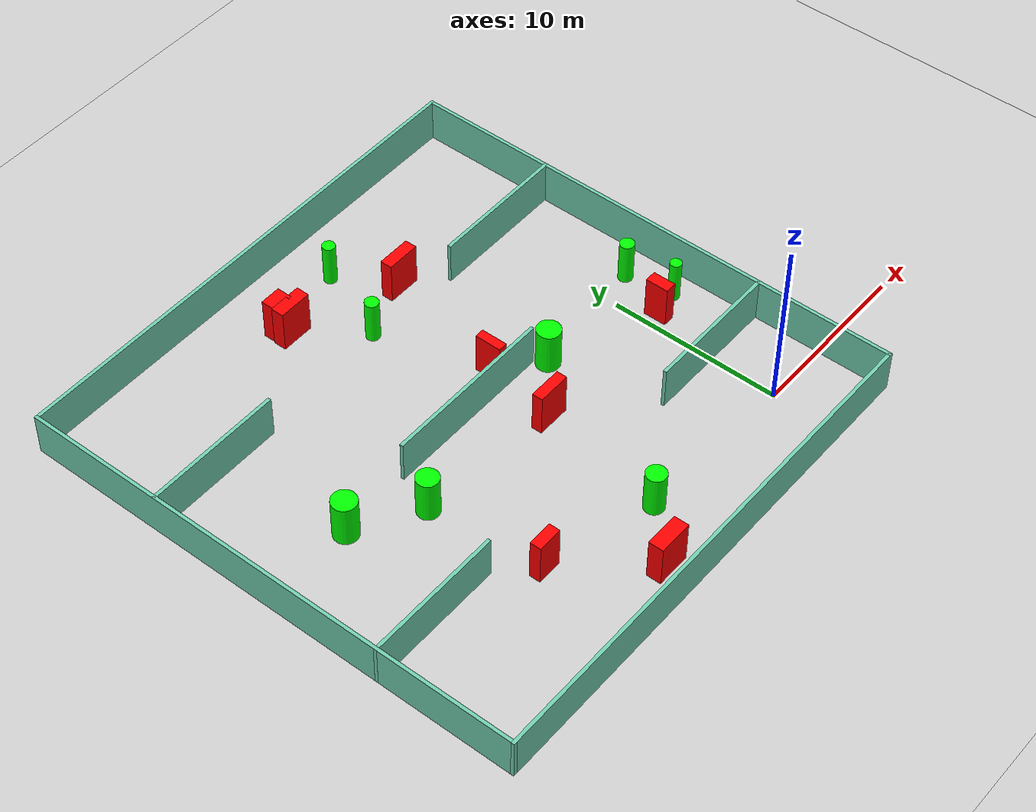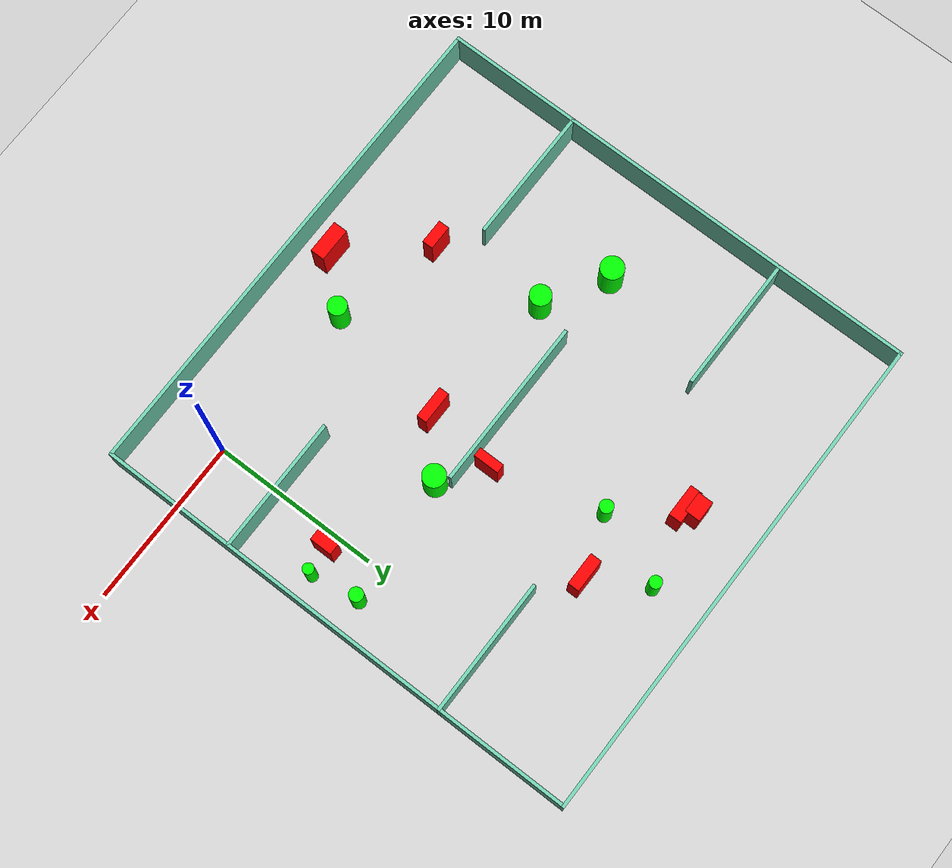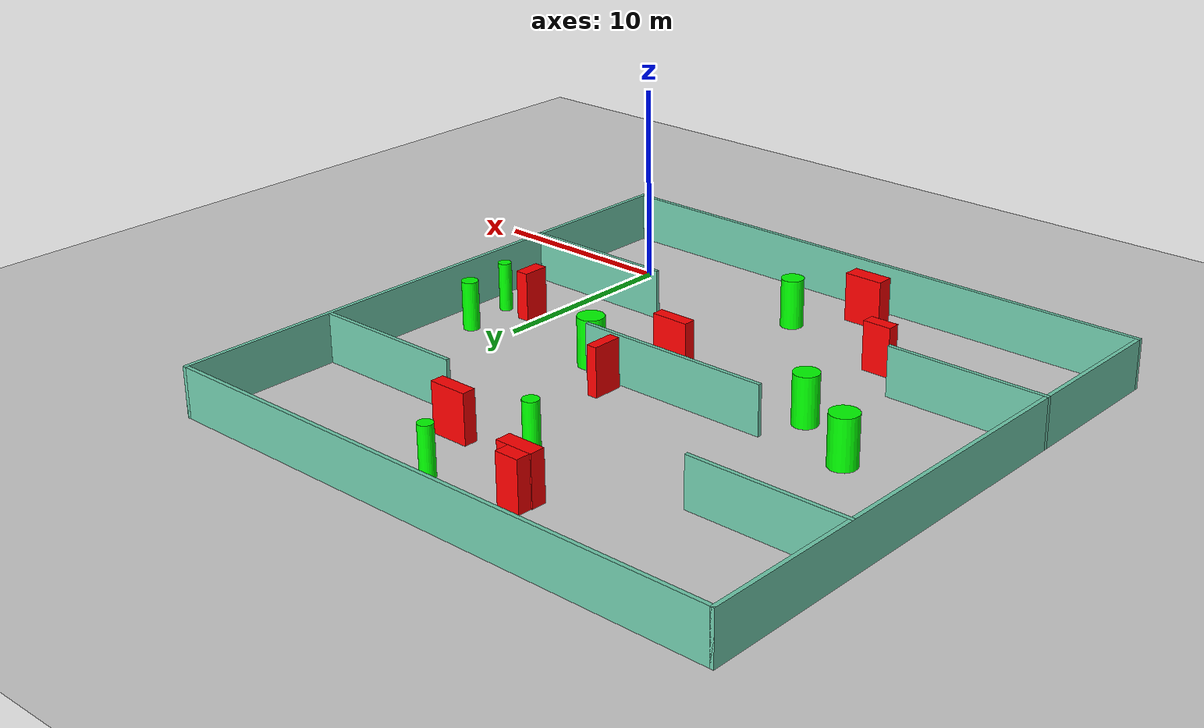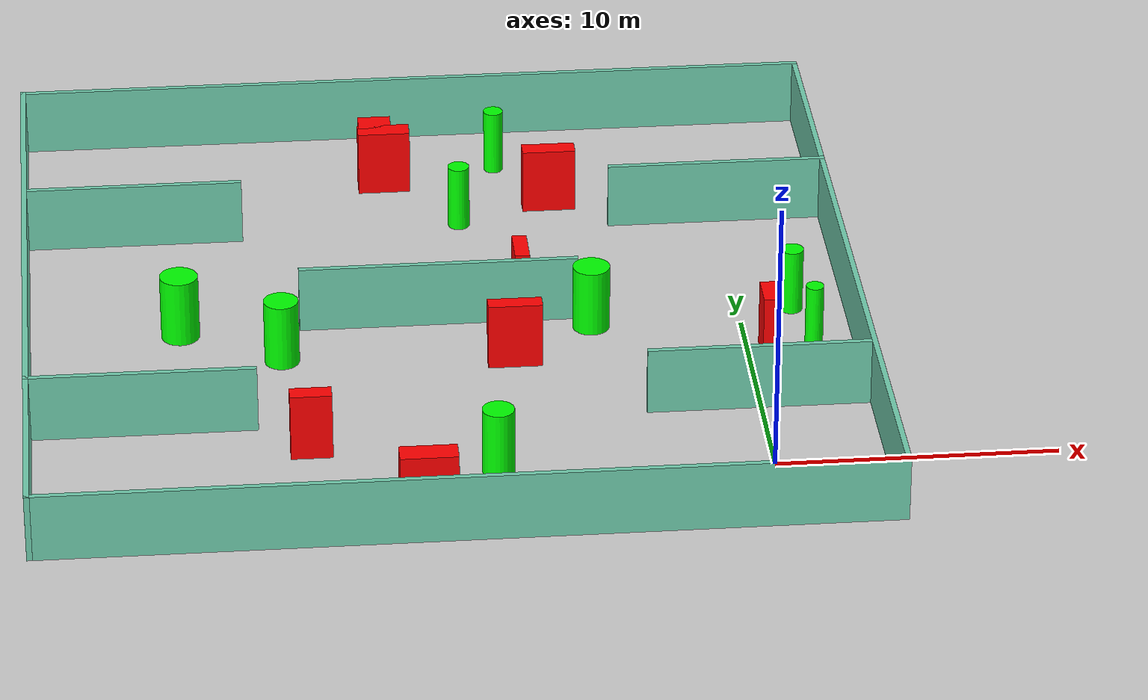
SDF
<sdf version="1.7">
 <world name="default">
  <light name="sun" type="directional">
   <pose>0 0 10 0 -0 0</pose>
   <diffuse>0.8 0.8 0.8 1</diffuse>
   <specular>0.2 0.2 0.2 1</specular>
   <attenuation>
    <range>1000</range>
    <constant>0.9</constant>
    <linear>0.01</linear>
    <quadratic>0.001</quadratic>
   </attenuation>
   <direction>-0.5 0.1 -0.9</direction>
   <spot><inner_angle>0</inner_angle><outer_angle>0</outer_angle><falloff>0</falloff></spot>
  </light>
  <model name="ground_plane">
   <static>1</static>
   <link name="link">
    <collision name="collision">
     <geometry><plane><normal>0 0 1</normal><size>100 100</size></plane></geometry>
     <surface>
      <contact><collide_bitmask>65535</collide_bitmask></contact>
      <friction><ode><mu>100</mu><mu2>50</mu2></ode></friction>
     </surface>
    </collision>
    <visual name="visual">
     <cast_shadows>0</cast_shadows>
     <geometry><plane><normal>0 0 1</normal><size>100 100</size></plane></geometry>
     <material>
      <script><uri>file://media/materials/scripts/gazebo.material</uri><name>Gazebo/Grey</name></script>
     </material>
    </visual>
   </link>
  </model>
  <gravity>0 0 -9.8</gravity>
  <magnetic_field>6e-06 2.3e-05 -4.2e-05</magnetic_field>
  <atmosphere type="adiabatic"/>
  <physics type="ode">
   <max_step_size>0.001</max_step_size>
   <real_time_factor>1</real_time_factor>
   <real_time_update_rate>1000</real_time_update_rate>
  </physics>
  <scene><ambient>0.4 0.4 0.4 1</ambient><background>0.7 0.7 0.7 1</background><shadows>1</shadows></scene>
  <spherical_coordinates>
   <surface_model>EARTH_WGS84</surface_model>
   <latitude_deg>0</latitude_deg>
   <longitude_deg>0</longitude_deg>
   <elevation>0</elevation>
   <heading_deg>0</heading_deg>
  </spherical_coordinates>
  <model name="my_base_walls">
   <link name="Wall_10">
    <collision name="Wall_10_Collision">
     <geometry><box><size>8.2 0.2 2.5</size></box></geometry>
     <pose>0 0 1.25 0 -0 0</pose>
    </collision>
    <visual name="Wall_10_Visual">
     <pose>0 0 1.25 0 -0 0</pose>
     <geometry><box><size>8.2 0.2 2.5</size></box></geometry>
     <material>
      <script><uri>file://media/materials/scripts/gazebo.material</uri><name>Gazebo/Grey</name></script>
      <ambient>0.435294 0.796078 0.67451 1</ambient>
     </material>
     <meta><layer>0</layer></meta>
    </visual>
    <pose>-11 -7 0 0 -0 0</pose>
   </link>
   <link name="Wall_12">
    <collision name="Wall_12_Collision">
     <geometry><box><size>8.2 0.2 2.5</size></box></geometry>
     <pose>0 0 1.25 0 -0 0</pose>
    </collision>
    <visual name="Wall_12_Visual">
     <pose>0 0 1.25 0 -0 0</pose>
     <geometry><box><size>8.2 0.2 2.5</size></box></geometry>
     <material>
      <script><uri>file://media/materials/scripts/gazebo.material</uri><name>Gazebo/Grey</name></script>
      <ambient>0.435294 0.796078 0.67451 1</ambient>
     </material>
     <meta><layer>0</layer></meta>
    </visual>
    <pose>-11 7 0 0 -0 0</pose>
   </link>
   <link name="Wall_14">
    <collision name="Wall_14_Collision">
     <geometry><box><size>8.2 0.2 2.5</size></box></geometry>
     <pose>0 0 1.25 0 -0 0</pose>
    </collision>
    <visual name="Wall_14_Visual">
     <pose>0 0 1.25 0 -0 0</pose>
     <geometry><box><size>8.2 0.2 2.5</size></box></geometry>
     <material>
      <script><uri>file://media/materials/scripts/gazebo.material</uri><name>Gazebo/Grey</name></script>
      <ambient>0.435294 0.796078 0.67451 1</ambient>
     </material>
     <meta><layer>0</layer></meta>
    </visual>
    <pose>11 7 0 0 -0 3.14159</pose>
   </link>
   <link name="Wall_16">
    <collision name="Wall_16_Collision">
     <geometry><box><size>10.2 0.2 2.5</size></box></geometry>
     <pose>0 0 1.25 0 -0 0</pose>
    </collision>
    <visual name="Wall_16_Visual">
     <pose>0 0 1.25 0 -0 0</pose>
     <geometry><box><size>10.2 0.2 2.5</size></box></geometry>
     <material>
      <script><uri>file://media/materials/scripts/gazebo.material</uri><name>Gazebo/Grey</name></script>
      <ambient>0.435294 0.796078 0.67451 1</ambient>
     </material>
     <meta><layer>0</layer></meta>
    </visual>
    <pose>0 0 0 0 -0 3.14159</pose>
   </link>
   <link name="Wall_2">
    <collision name="Wall_2_Collision">
     <geometry><box><size>30.2 0.2 2.5</size></box></geometry>
     <pose>0 0 1.25 0 -0 0</pose>
    </collision>
    <visual name="Wall_2_Visual">
     <pose>0 0 1.25 0 -0 0</pose>
     <geometry><box><size>30.2 0.2 2.5</size></box></geometry>
     <material>
      <script><uri>file://media/materials/scripts/gazebo.material</uri><name>Gazebo/Grey</name></script>
      <ambient>0.435294 0.796078 0.67451 1</ambient>
     </material>
     <meta><layer>0</layer></meta>
    </visual>
    <pose>0 -15 0 0 -0 3.14159</pose>
   </link>
   <link name="Wall_3">
    <collision name="Wall_3_Collision">
     <geometry><box><size>30.2 0.2 2.5</size></box></geometry>
     <pose>0 0 1.25 0 -0 0</pose>
    </collision>
    <visual name="Wall_3_Visual">
     <pose>0 0 1.25 0 -0 0</pose>
     <geometry><box><size>30.2 0.2 2.5</size></box></geometry>
     <material>
      <script><uri>file://media/materials/scripts/gazebo.material</uri><name>Gazebo/Grey</name></script>
      <ambient>0.435294 0.796078 0.67451 1</ambient>
     </material>
     <meta><layer>0</layer></meta>
    </visual>
    <pose>-15 0 0 0 -0 1.5708</pose>
   </link>
   <link name="Wall_4">
    <collision name="Wall_4_Collision">
     <geometry><box><size>30.2 0.2 2.5</size></box></geometry>
     <pose>0 0 1.25 0 -0 0</pose>
    </collision>
    <visual name="Wall_4_Visual">
     <pose>0 0 1.25 0 -0 0</pose>
     <geometry><box><size>30.2 0.2 2.5</size></box></geometry>
     <material>
      <script><uri>file://media/materials/scripts/gazebo.material</uri><name>Gazebo/Grey</name></script>
      <ambient>0.435294 0.796078 0.67451 1</ambient>
     </material>
     <meta><layer>0</layer></meta>
    </visual>
    <pose>0 15 0 0 -0 0</pose>
   </link>
   <link name="Wall_6">
    <collision name="Wall_6_Collision">
     <geometry><box><size>30.2 0.2 2.5</size></box></geometry>
     <pose>0 0 1.25 0 -0 0</pose>
    </collision>
    <visual name="Wall_6_Visual">
     <pose>0 0 1.25 0 -0 0</pose>
     <geometry><box><size>30.2 0.2 2.5</size></box></geometry>
     <material>
      <script><uri>file://media/materials/scripts/gazebo.material</uri><name>Gazebo/Grey</name></script>
      <ambient>0.435294 0.796078 0.67451 1</ambient>
     </material>
     <meta><layer>0</layer></meta>
    </visual>
    <pose>15 0 0 0 -0 1.5708</pose>
   </link>
   <link name="Wall_8">
    <collision name="Wall_8_Collision">
     <geometry><box><size>8.2 0.2 2.5</size></box></geometry>
     <pose>0 0 1.25 0 -0 0</pose>
    </collision>
    <visual name="Wall_8_Visual">
     <pose>0 0 1.25 0 -0 0</pose>
     <geometry><box><size>8.2 0.2 2.5</size></box></geometry>
     <material>
      <script><uri>file://media/materials/scripts/gazebo.material</uri><name>Gazebo/Grey</name></script>
      <ambient>0.435294 0.796078 0.67451 1</ambient>
     </material>
     <meta><layer>0</layer></meta>
    </visual>
    <pose>11 -7 0 0 -0 3.14159</pose>
   </link>
   <static>1</static>
   <pose>-11 11 0 0 -0 0</pose>
  </model>
  <model name="cylinder1">
   <static>1</static>
   <link name="link">
    <inertial>
     <mass>1</mass>
     <inertia><ixx>0.5</ixx><ixy>0</ixy><ixz>0</ixz><iyy>0.5</iyy><iyz>0</iyz><izz>1</izz></inertia>
    </inertial>
    <collision name="collision">
     <geometry><cylinder><radius>0.6305937341362449</radius><length>2.5</length></cylinder></geometry>
    </collision>
    <visual name="visual">
     <geometry><cylinder><radius>0.6305937341362449</radius><length>2.5</length></cylinder></geometry>
     <material>
      <ambient>0 1 0 1</ambient>
      <diffuse>0 1 0 1</diffuse>
      <specular>0.1 0.1 0.1 1</specular>
      <emissive>0 0 0 0</emissive>
     </material>
    </visual>
   </link>
   <pose>-16.8406859807351 8.709128262393431 1.25 0 0 0</pose>
  </model>
  <model name="cylinder2">
   <static>1</static>
   <link name="link">
    <inertial>
     <mass>1</mass>
     <inertia><ixx>0.5</ixx><ixy>0</ixy><ixz>0</ixz><iyy>0.5</iyy><iyz>0</iyz><izz>1</izz></inertia>
    </inertial>
    <collision name="collision">
     <geometry><cylinder><radius>0.4011651252394368</radius><length>2.5</length></cylinder></geometry>
    </collision>
    <visual name="visual">
     <geometry><cylinder><radius>0.4011651252394368</radius><length>2.5</length></cylinder></geometry>
     <material>
      <ambient>0 1 0 1</ambient>
      <diffuse>0 1 0 1</diffuse>
      <specular>0.1 0.1 0.1 1</specular>
      <emissive>0 0 0 0</emissive>
     </material>
    </visual>
   </link>
   <pose>-9.709182262830566 18.4749846625448 1.25 0 0 0</pose>
  </model>
  <model name="cylinder3">
   <static>1</static>
   <link name="link">
    <inertial>
     <mass>1</mass>
     <inertia><ixx>0.5</ixx><ixy>0</ixy><ixz>0</ixz><iyy>0.5</iyy><iyz>0</iyz><izz>1</izz></inertia>
    </inertial>
    <collision name="collision">
     <geometry><cylinder><radius>0.6969901044779523</radius><length>2.5</length></cylinder></geometry>
    </collision>
    <visual name="visual">
     <geometry><cylinder><radius>0.6969901044779523</radius><length>2.5</length></cylinder></geometry>
     <material>
      <ambient>0 1 0 1</ambient>
      <diffuse>0 1 0 1</diffuse>
      <specular>0.1 0.1 0.1 1</specular>
      <emissive>0 0 0 0</emissive>
     </material>
    </visual>
   </link>
   <pose>-20.442674507410867 10.85810651975777 1.25 0 0 0</pose>
  </model>
  <model name="cylinder4">
   <static>1</static>
   <link name="link">
    <inertial>
     <mass>1</mass>
     <inertia><ixx>0.5</ixx><ixy>0</ixy><ixz>0</ixz><iyy>0.5</iyy><iyz>0</iyz><izz>1</izz></inertia>
    </inertial>
    <collision name="collision">
     <geometry><cylinder><radius>0.570156459499958</radius><length>2.5</length></cylinder></geometry>
    </collision>
    <visual name="visual">
     <geometry><cylinder><radius>0.570156459499958</radius><length>2.5</length></cylinder></geometry>
     <material>
      <ambient>0 1 0 1</ambient>
      <diffuse>0 1 0 1</diffuse>
      <specular>0.1 0.1 0.1 1</specular>
      <emissive>0 0 0 0</emissive>
     </material>
    </visual>
   </link>
   <pose>-9.680588515721329 0.37236012913519234 1.25 0 0 0</pose>
  </model>
  <model name="cylinder5">
   <static>1</static>
   <link name="link">
    <inertial>
     <mass>1</mass>
     <inertia><ixx>0.5</ixx><ixy>0</ixy><ixz>0</ixz><iyy>0.5</iyy><iyz>0</iyz><izz>1</izz></inertia>
    </inertial>
    <collision name="collision">
     <geometry><cylinder><radius>0.6770823512393576</radius><length>2.5</length></cylinder></geometry>
    </collision>
    <visual name="visual">
     <geometry><cylinder><radius>0.6770823512393576</radius><length>2.5</length></cylinder></geometry>
     <material>
      <ambient>0 1 0 1</ambient>
      <diffuse>0 1 0 1</diffuse>
      <specular>0.1 0.1 0.1 1</specular>
      <emissive>0 0 0 0</emissive>
     </material>
    </visual>
   </link>
   <pose>-5.4804819271087695 10.27671908416686 1.25 0 0 0</pose>
  </model>
  <model name="cylinder6">
   <static>1</static>
   <link name="link">
    <inertial>
     <mass>1</mass>
     <inertia><ixx>0.5</ixx><ixy>0</ixy><ixz>0</ixz><iyy>0.5</iyy><iyz>0</iyz><izz>1</izz></inertia>
    </inertial>
    <collision name="collision">
     <geometry><cylinder><radius>0.32718794034375814</radius><length>2.5</length></cylinder></geometry>
    </collision>
    <visual name="visual">
     <geometry><cylinder><radius>0.32718794034375814</radius><length>2.5</length></cylinder></geometry>
     <material>
      <ambient>0 1 0 1</ambient>
      <diffuse>0 1 0 1</diffuse>
      <specular>0.1 0.1 0.1 1</specular>
      <emissive>0 0 0 0</emissive>
     </material>
    </visual>
   </link>
   <pose>2.422928580722523 8.122410737131654 1.25 0 0 0</pose>
  </model>
  <model name="cylinder7">
   <static>1</static>
   <link name="link">
    <inertial>
     <mass>1</mass>
     <inertia><ixx>0.5</ixx><ixy>0</ixy><ixz>0</ixz><iyy>0.5</iyy><iyz>0</iyz><izz>1</izz></inertia>
    </inertial>
    <collision name="collision">
     <geometry><cylinder><radius>0.4127881411993207</radius><length>2.5</length></cylinder></geometry>
    </collision>
    <visual name="visual">
     <geometry><cylinder><radius>0.4127881411993207</radius><length>2.5</length></cylinder></geometry>
     <material>
      <ambient>0 1 0 1</ambient>
      <diffuse>0 1 0 1</diffuse>
      <specular>0.1 0.1 0.1 1</specular>
      <emissive>0 0 0 0</emissive>
     </material>
    </visual>
   </link>
   <pose>1.9644508823564095 10.942570183756384 1.25 0 0 0</pose>
  </model>
  <model name="cylinder8">
   <static>1</static>
   <link name="link">
    <inertial>
     <mass>1</mass>
     <inertia><ixx>0.5</ixx><ixy>0</ixy><ixz>0</ixz><iyy>0.5</iyy><iyz>0</iyz><izz>1</izz></inertia>
    </inertial>
    <collision name="collision">
     <geometry><cylinder><radius>0.3692276093632724</radius><length>2.5</length></cylinder></geometry>
    </collision>
    <visual name="visual">
     <geometry><cylinder><radius>0.3692276093632724</radius><length>2.5</length></cylinder></geometry>
     <material>
      <ambient>0 1 0 1</ambient>
      <diffuse>0 1 0 1</diffuse>
      <specular>0.1 0.1 0.1 1</specular>
      <emissive>0 0 0 0</emissive>
     </material>
    </visual>
   </link>
   <pose>-8.044610899797819 22.908971960993277 1.25 0 0 0</pose>
  </model>
  <model name="box1">
   <static>1</static>
   <link name="link">
    <inertial>
     <mass>1</mass>
     <inertia><ixx>0.083</ixx><ixy>0</ixy><ixz>0</ixz><iyy>0.083</iyy><iyz>0</iyz><izz>0.083</izz></inertia>
    </inertial>
    <collision name="collision">
     <geometry><box><size>1.231664064281489 0.9278974941039876 2.5</size></box></geometry>
    </collision>
    <visual name="visual">
     <geometry><box><size>1.231664064281489 0.9278974941039876 2.5</size></box></geometry>
     <material>
      <ambient>1 0 0 1</ambient>
      <diffuse>1 0 0 1</diffuse>
      <specular>0.1 0.1 0.1 1</specular>
      <emissive>0 0 0 0</emissive>
     </material>
    </visual>
    <sensor name="my_contact" type="contact">
     <contact><collision>box_collision</collision><topic>__default_topic__</topic></contact>
    </sensor>
   </link>
   <pose>-12.647853275198102 22.34553717199859 1.25 0 0 0</pose>
  </model>
  <model name="box2">
   <static>1</static>
   <link name="link">
    <inertial>
     <mass>1</mass>
     <inertia><ixx>0.083</ixx><ixy>0</ixy><ixz>0</ixz><iyy>0.083</iyy><iyz>0</iyz><izz>0.083</izz></inertia>
    </inertial>
    <collision name="collision">
     <geometry><box><size>2.031794589308343 0.8570999091938699 2.5</size></box></geometry>
    </collision>
    <visual name="visual">
     <geometry><box><size>2.031794589308343 0.8570999091938699 2.5</size></box></geometry>
     <material>
      <ambient>1 0 0 1</ambient>
      <diffuse>1 0 0 1</diffuse>
      <specular>0.1 0.1 0.1 1</specular>
      <emissive>0 0 0 0</emissive>
     </material>
    </visual>
    <sensor name="my_contact" type="contact">
     <contact><collision>box_collision</collision><topic>__default_topic__</topic></contact>
    </sensor>
   </link>
   <pose>-12.286909090840412 -2.293373912317556 1.25 0 0 0</pose>
  </model>
  <model name="box3">
   <static>1</static>
   <link name="link">
    <inertial>
     <mass>1</mass>
     <inertia><ixx>0.083</ixx><ixy>0</ixy><ixz>0</ixz><iyy>0.083</iyy><iyz>0</iyz><izz>0.083</izz></inertia>
    </inertial>
    <collision name="collision">
     <geometry><box><size>1.4788495778535475 0.6469649902269817 2.5</size></box></geometry>
    </collision>
    <visual name="visual">
     <geometry><box><size>1.4788495778535475 0.6469649902269817 2.5</size></box></geometry>
     <material>
      <ambient>1 0 0 1</ambient>
      <diffuse>1 0 0 1</diffuse>
      <specular>0.1 0.1 0.1 1</specular>
      <emissive>0 0 0 0</emissive>
     </material>
    </visual>
    <sensor name="my_contact" type="contact">
     <contact><collision>box_collision</collision><topic>__default_topic__</topic></contact>
    </sensor>
   </link>
   <pose>-16.110192851017434 2.0980327219415145 1.25 0 0 0</pose>
  </model>
  <model name="box4">
   <static>1</static>
   <link name="link">
    <inertial>
     <mass>1</mass>
     <inertia><ixx>0.083</ixx><ixy>0</ixy><ixz>0</ixz><iyy>0.083</iyy><iyz>0</iyz><izz>0.083</izz></inertia>
    </inertial>
    <collision name="collision">
     <geometry><box><size>1.967601051568549 0.6159436803152076 2.5</size></box></geometry>
    </collision>
    <visual name="visual">
     <geometry><box><size>1.967601051568549 0.6159436803152076 2.5</size></box></geometry>
     <material>
      <ambient>1 0 0 1</ambient>
      <diffuse>1 0 0 1</diffuse>
      <specular>0.1 0.1 0.1 1</specular>
      <emissive>0 0 0 0</emissive>
     </material>
    </visual>
    <sensor name="my_contact" type="contact">
     <contact><collision>box_collision</collision><topic>__default_topic__</topic></contact>
    </sensor>
   </link>
   <pose>-8.471999906987087 7.857630408906758 1.25 0 0 0</pose>
  </model>
  <model name="box5">
   <static>1</static>
   <link name="link">
    <inertial>
     <mass>1</mass>
     <inertia><ixx>0.083</ixx><ixy>0</ixy><ixz>0</ixz><iyy>0.083</iyy><iyz>0</iyz><izz>0.083</izz></inertia>
    </inertial>
    <collision name="collision">
     <geometry><box><size>0.5431265581610578 1.5464114279400452 2.5</size></box></geometry>
    </collision>
    <visual name="visual">
     <geometry><box><size>0.5431265581610578 1.5464114279400452 2.5</size></box></geometry>
     <material>
      <ambient>1 0 0 1</ambient>
      <diffuse>1 0 0 1</diffuse>
      <specular>0.1 0.1 0.1 1</specular>
      <emissive>0 0 0 0</emissive>
     </material>
    </visual>
    <sensor name="my_contact" type="contact">
     <contact><collision>box_collision</collision><topic>__default_topic__</topic></contact>
    </sensor>
   </link>
   <pose>-7.9064887180262176 12.063745683584093 1.25 0 0 0</pose>
  </model>
  <model name="box6">
   <static>1</static>
   <link name="link">
    <inertial>
     <mass>1</mass>
     <inertia><ixx>0.083</ixx><ixy>0</ixy><ixz>0</ixz><iyy>0.083</iyy><iyz>0</iyz><izz>0.083</izz></inertia>
    </inertial>
    <collision name="collision">
     <geometry><box><size>1.9568853241214472 0.7695022913156954 2.5</size></box></geometry>
    </collision>
    <visual name="visual">
     <geometry><box><size>1.9568853241214472 0.7695022913156954 2.5</size></box></geometry>
     <material>
      <ambient>1 0 0 1</ambient>
      <diffuse>1 0 0 1</diffuse>
      <specular>0.1 0.1 0.1 1</specular>
      <emissive>0 0 0 0</emissive>
     </material>
    </visual>
    <sensor name="my_contact" type="contact">
     <contact><collision>box_collision</collision><topic>__default_topic__</topic></contact>
    </sensor>
   </link>
   <pose>-12.342315248341777 21.71442751284778 1.25 0 0 0</pose>
  </model>
  <model name="box7">
   <static>1</static>
   <link name="link">
    <inertial>
     <mass>1</mass>
     <inertia><ixx>0.083</ixx><ixy>0</ixy><ixz>0</ixz><iyy>0.083</iyy><iyz>0</iyz><izz>0.083</izz></inertia>
    </inertial>
    <collision name="collision">
     <geometry><box><size>0.6796336374625291 1.343813039719359 2.5</size></box></geometry>
    </collision>
    <visual name="visual">
     <geometry><box><size>0.6796336374625291 1.343813039719359 2.5</size></box></geometry>
     <material>
      <ambient>1 0 0 1</ambient>
      <diffuse>1 0 0 1</diffuse>
      <specular>0.1 0.1 0.1 1</specular>
      <emissive>0 0 0 0</emissive>
     </material>
    </visual>
    <sensor name="my_contact" type="contact">
     <contact><collision>box_collision</collision><topic>__default_topic__</topic></contact>
    </sensor>
   </link>
   <pose>0.8022909988941329 7.899283319533549 1.25 0 0 0</pose>
  </model>
  <model name="box8">
   <static>1</static>
   <link name="link">
    <inertial>
     <mass>1</mass>
     <inertia><ixx>0.083</ixx><ixy>0</ixy><ixz>0</ixz><iyy>0.083</iyy><iyz>0</iyz><izz>0.083</izz></inertia>
    </inertial>
    <collision name="collision">
     <geometry><box><size>1.9927075787657589 0.689680311564678 2.5</size></box></geometry>
    </collision>
    <visual name="visual">
     <geometry><box><size>1.9927075787657589 0.689680311564678 2.5</size></box></geometry>
     <material>
      <ambient>1 0 0 1</ambient>
      <diffuse>1 0 0 1</diffuse>
      <specular>0.1 0.1 0.1 1</specular>
      <emissive>0 0 0 0</emissive>
     </material>
    </visual>
    <sensor name="my_contact" type="contact">
     <contact><collision>box_collision</collision><topic>__default_topic__</topic></contact>
    </sensor>
   </link>
   <pose>-6.210669313984424 19.67072663888812 1.25 0 0 0</pose>
  </model>
 </world>
</sdf>
